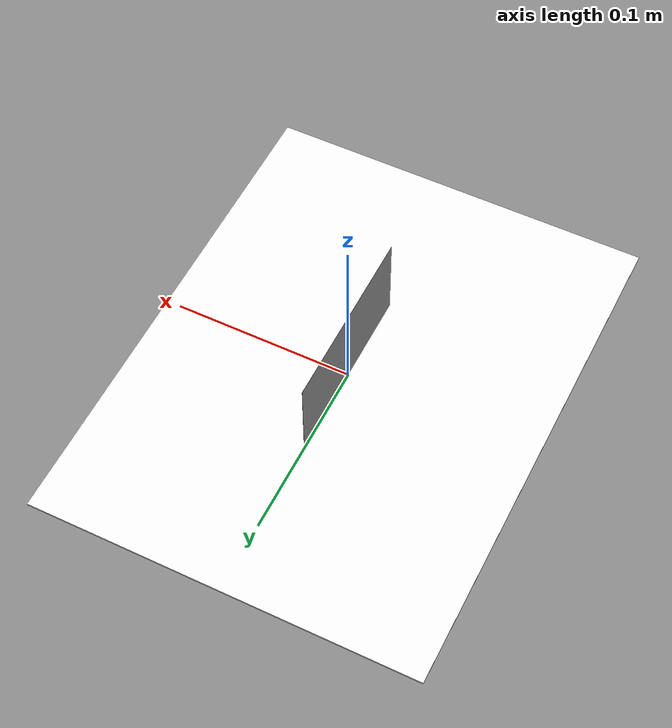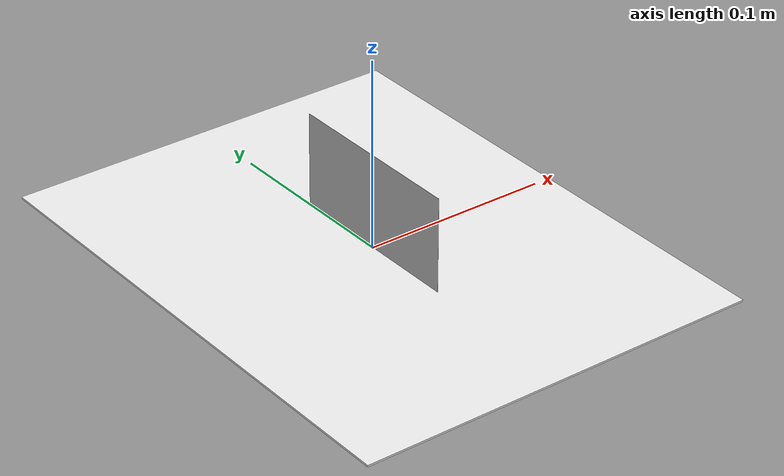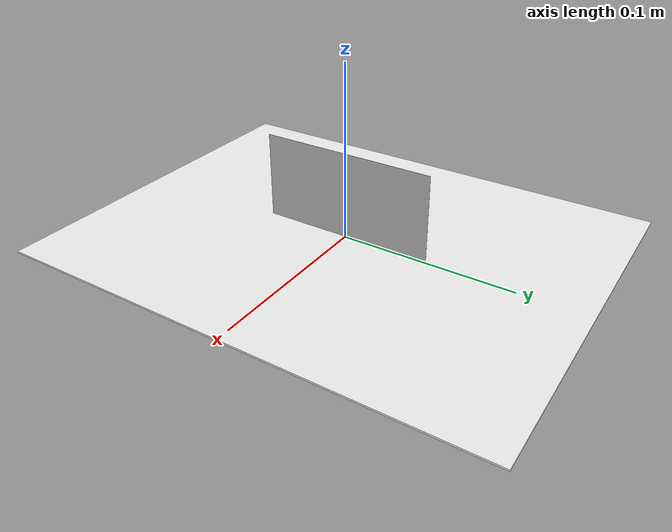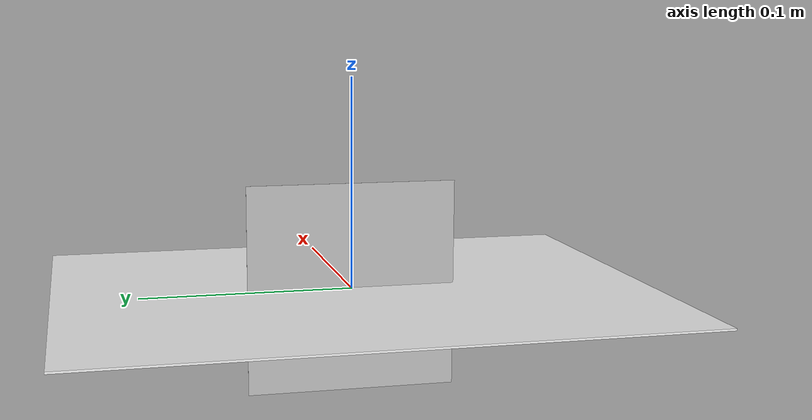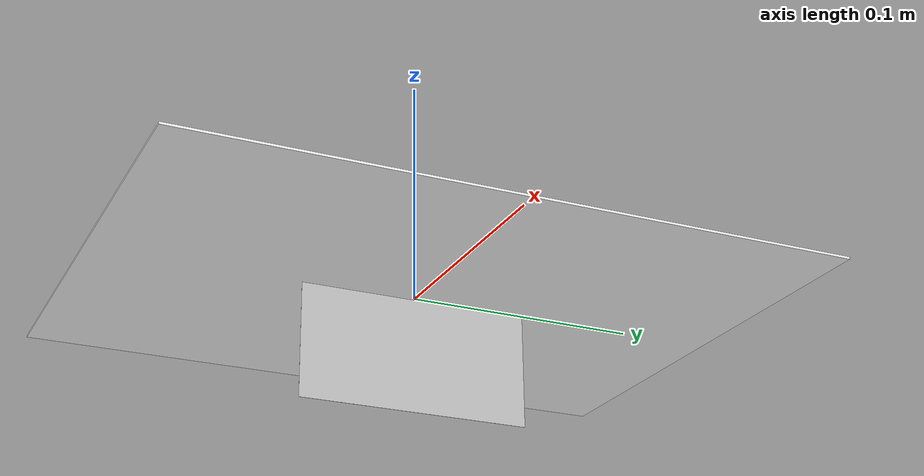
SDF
<?xml version="1.0" ?>
<sdf version="1.5">
    <model name='paper_letter_size'>
    <pose>0.0 0.0 0.0 0.0 0.0 0.0</pose>
      <link name='link'>
        <self_collide>0</self_collide>
        <enable_wind>0</enable_wind>
        <kinematic>0</kinematic>
        <pose>0 0 0 0 -0 0</pose>
        <gravity>1</gravity>
        <visual name='visual'>
          <geometry>
            <box>
              <size>0.2159 0.2794 0.001</size>
            </box>
          </geometry>
          <material>
            <script>
              <name>Gazebo/White</name>
              <uri>file://media/materials/scripts/gazebo.material</uri>
            </script>
            <shader type='pixel'>
              <normal_map>__default__</normal_map>
            </shader>
            <ambient>1 1 1 1</ambient>
            <diffuse>1 1 1 1</diffuse>
            <specular>0 0 0 1</specular>
            <emissive>0 0 0 1</emissive>
          </material>
          <pose>0 0 0 0 -0 0</pose>
          <transparency>0</transparency>
          <cast_shadows>1</cast_shadows>
        </visual>
      </link>
      <static>1</static>

      <include>
        <name>aruco</name>
        <static>true</static>       <!--no interaction-->
        <uri>model://aruco_marker</uri>
        <pose>0.0 0.0 0.0005 1.57 -1.57 -1.57</pose>
      </include>

      <allow_auto_disable>1</allow_auto_disable>
    </model>
</sdf>

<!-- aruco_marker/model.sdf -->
<sdf version="1.4"> <model name="aruco_marker">   <static>true</static>
    <link name="link">
      <collision name="collision">
        <geometry>
          <plane>
            <normal>0 0 1</normal>
            <size>0.1 0.1</size>
          </plane>
        </geometry>
        <surface>
          <friction>
            <ode>
              <mu>100</mu>
              <mu2>50</mu2>
            </ode>
          </friction>
        </surface>
      </collision>
      <visual name="visual">
        <cast_shadows>false</cast_shadows>
        <geometry>
          <plane>
            <normal>0 0 1</normal>
            <size>0.1 0.1</size>    </plane>    <mesh>
        <uri>model://aruco_marker/materials/textures/aruco_marker.dae</uri>
          </mesh>
        </geometry>
        <material>
          <script>
            <uri>model://aruco_marker/materials/scripts/</uri>
            <uri>model://aruco_marker/materials/textures/</uri>
            <name>ArucoMarker/Image</name>
          </script>
        </material>
      </visual>
    </link>   </model> </sdf>
